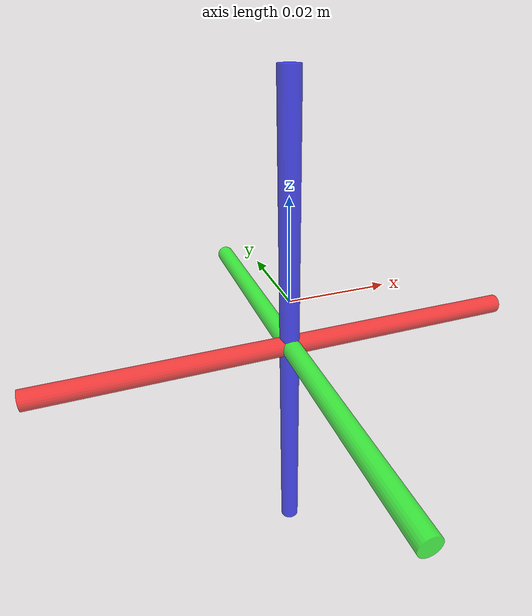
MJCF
<mujoco>
    <worldbody>
        <body name="origin_frame" pos="0.0 0 -0.01">
            <geom type="cylinder" size="0.002 0.05" pos="0 0 0" quat="0.7071 0 0.7071 0" rgba="1 0 0 0.7"/>  <!-- X轴（红色） -->
            <geom type="cylinder" size="0.002 0.05" pos="0 0 0" quat="0.7071 -0.7071 0 0" rgba="0 1 0 0.7"/>  <!-- Y轴（绿色） -->
            <geom type="cylinder" size="0.002 0.05" pos="0 0 0" rgba="0 0 1 0.7"/>  <!-- Z轴（蓝色） -->
        </body>
    </worldbody>
</mujoco>
